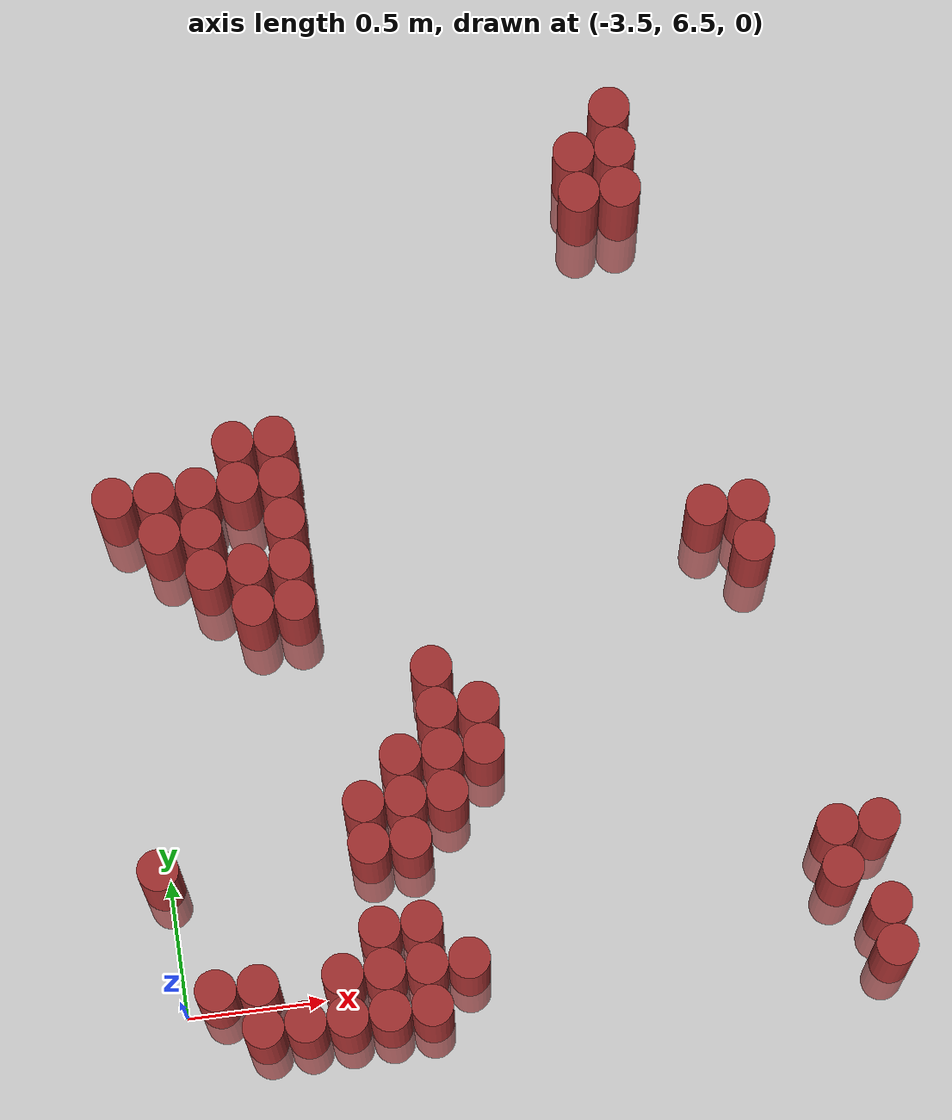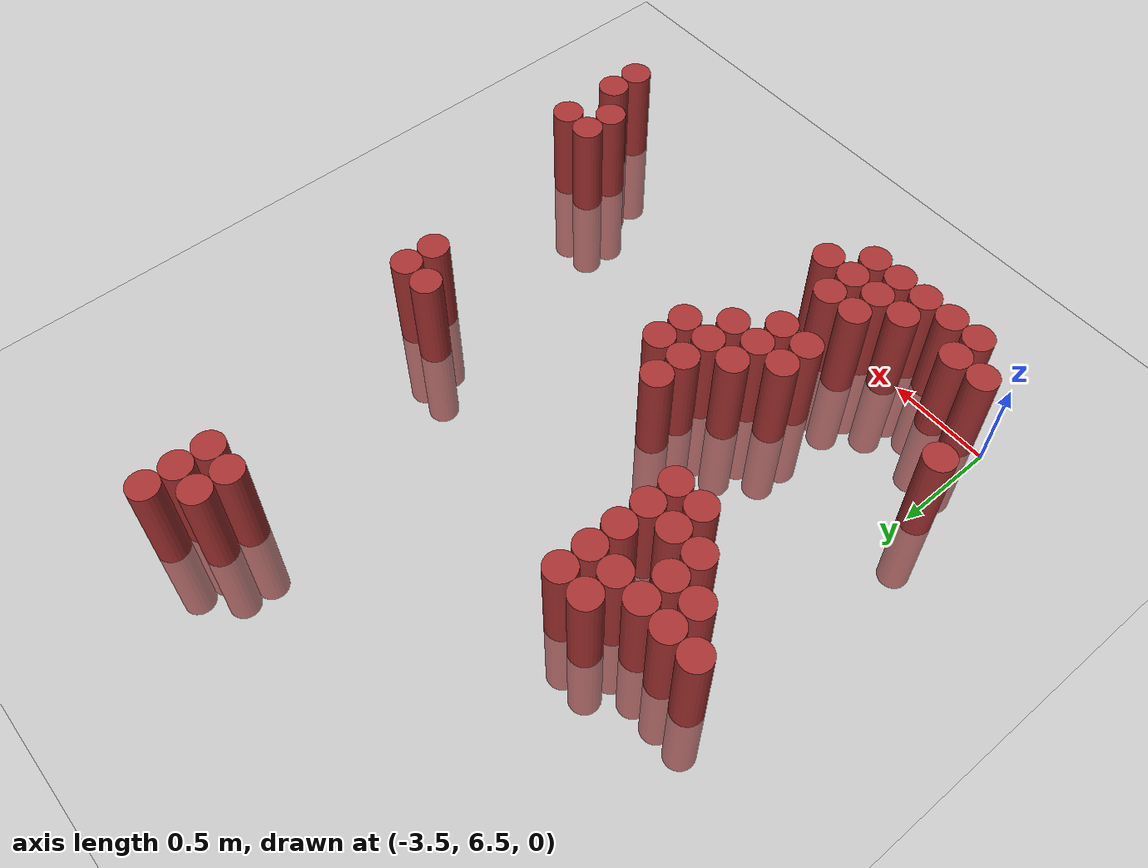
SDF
<sdf version="1.6">
 <world name="default">
  <model name="ground_plane">
   <static>1</static>
   <link name="link">
    <collision name="collision">
     <geometry><plane><normal>0 0 1</normal><size>100 100</size></plane></geometry>
     <surface><friction><ode><mu>100</mu><mu2>50</mu2></ode></friction></surface>
    </collision>
    <visual name="visual">
     <cast_shadows>0</cast_shadows>
     <geometry><plane><normal>0 0 1</normal><size>100 100</size></plane></geometry>
     <material>
      <script><uri>file://media/materials/scripts/gazebo.material</uri><name>Gazebo/Grey</name></script>
     </material>
    </visual>
   </link>
  </model>
  <model name="unit_cylinder_169">
   <static>1</static>
   <pose>-3.525000 6.975000 0.000000 0.000000 0.000000 0.000000</pose>
   <link name="link">
    <inertial>
     <mass>1</mass>
     <inertia><ixx>0.145833</ixx><ixy>0</ixy><ixz>0</ixz><iyy>0.145833</iyy><iyz>0</iyz><izz>0.125</izz></inertia>
    </inertial>
    <collision name="collision">
     <geometry><cylinder><radius>0.075000</radius><length>1</length></cylinder></geometry>
    </collision>
    <visual name="visual">
     <geometry><cylinder><radius>0.075000</radius><length>1</length></cylinder></geometry>
     <material>
      <ambient>0.648000 0.192000 0.192000 1</ambient>
      <diffuse>0.648000 0.192000 0.192000 1</diffuse>
     </material>
     <material>
      <script><name>Gazebo/Grey</name><uri>file://media/materials/scripts/gazebo.material</uri></script>
     </material>
    </visual>
   </link>
  </model>
  <model name="unit_cylinder_170">
   <static>1</static>
   <pose>-3.525000 8.325000 0.000000 0.000000 0.000000 0.000000</pose>
   <link name="link">
    <inertial>
     <mass>1</mass>
     <inertia><ixx>0.145833</ixx><ixy>0</ixy><ixz>0</ixz><iyy>0.145833</iyy><iyz>0</iyz><izz>0.125</izz></inertia>
    </inertial>
    <collision name="collision">
     <geometry><cylinder><radius>0.075000</radius><length>1</length></cylinder></geometry>
    </collision>
    <visual name="visual">
     <geometry><cylinder><radius>0.075000</radius><length>1</length></cylinder></geometry>
     <material>
      <ambient>0.648000 0.192000 0.192000 1</ambient>
      <diffuse>0.648000 0.192000 0.192000 1</diffuse>
     </material>
     <material>
      <script><name>Gazebo/Grey</name><uri>file://media/materials/scripts/gazebo.material</uri></script>
     </material>
    </visual>
   </link>
  </model>
  <model name="unit_cylinder_171">
   <static>1</static>
   <pose>-3.375000 6.525000 0.000000 0.000000 0.000000 0.000000</pose>
   <link name="link">
    <inertial>
     <mass>1</mass>
     <inertia><ixx>0.145833</ixx><ixy>0</ixy><ixz>0</ixz><iyy>0.145833</iyy><iyz>0</iyz><izz>0.125</izz></inertia>
    </inertial>
    <collision name="collision">
     <geometry><cylinder><radius>0.075000</radius><length>1</length></cylinder></geometry>
    </collision>
    <visual name="visual">
     <geometry><cylinder><radius>0.075000</radius><length>1</length></cylinder></geometry>
     <material>
      <ambient>0.648000 0.192000 0.192000 1</ambient>
      <diffuse>0.648000 0.192000 0.192000 1</diffuse>
     </material>
     <material>
      <script><name>Gazebo/Grey</name><uri>file://media/materials/scripts/gazebo.material</uri></script>
     </material>
    </visual>
   </link>
  </model>
  <model name="unit_cylinder_172">
   <static>1</static>
   <pose>-3.375000 8.175000 0.000000 0.000000 0.000000 0.000000</pose>
   <link name="link">
    <inertial>
     <mass>1</mass>
     <inertia><ixx>0.145833</ixx><ixy>0</ixy><ixz>0</ixz><iyy>0.145833</iyy><iyz>0</iyz><izz>0.125</izz></inertia>
    </inertial>
    <collision name="collision">
     <geometry><cylinder><radius>0.075000</radius><length>1</length></cylinder></geometry>
    </collision>
    <visual name="visual">
     <geometry><cylinder><radius>0.075000</radius><length>1</length></cylinder></geometry>
     <material>
      <ambient>0.648000 0.192000 0.192000 1</ambient>
      <diffuse>0.648000 0.192000 0.192000 1</diffuse>
     </material>
     <material>
      <script><name>Gazebo/Grey</name><uri>file://media/materials/scripts/gazebo.material</uri></script>
     </material>
    </visual>
   </link>
  </model>
  <model name="unit_cylinder_173">
   <static>1</static>
   <pose>-3.375000 8.325000 0.000000 0.000000 0.000000 0.000000</pose>
   <link name="link">
    <inertial>
     <mass>1</mass>
     <inertia><ixx>0.145833</ixx><ixy>0</ixy><ixz>0</ixz><iyy>0.145833</iyy><iyz>0</iyz><izz>0.125</izz></inertia>
    </inertial>
    <collision name="collision">
     <geometry><cylinder><radius>0.075000</radius><length>1</length></cylinder></geometry>
    </collision>
    <visual name="visual">
     <geometry><cylinder><radius>0.075000</radius><length>1</length></cylinder></geometry>
     <material>
      <ambient>0.648000 0.192000 0.192000 1</ambient>
      <diffuse>0.648000 0.192000 0.192000 1</diffuse>
     </material>
     <material>
      <script><name>Gazebo/Grey</name><uri>file://media/materials/scripts/gazebo.material</uri></script>
     </material>
    </visual>
   </link>
  </model>
  <model name="unit_cylinder_174">
   <static>1</static>
   <pose>-3.225000 6.375000 0.000000 0.000000 0.000000 0.000000</pose>
   <link name="link">
    <inertial>
     <mass>1</mass>
     <inertia><ixx>0.145833</ixx><ixy>0</ixy><ixz>0</ixz><iyy>0.145833</iyy><iyz>0</iyz><izz>0.125</izz></inertia>
    </inertial>
    <collision name="collision">
     <geometry><cylinder><radius>0.075000</radius><length>1</length></cylinder></geometry>
    </collision>
    <visual name="visual">
     <geometry><cylinder><radius>0.075000</radius><length>1</length></cylinder></geometry>
     <material>
      <ambient>0.648000 0.192000 0.192000 1</ambient>
      <diffuse>0.648000 0.192000 0.192000 1</diffuse>
     </material>
     <material>
      <script><name>Gazebo/Grey</name><uri>file://media/materials/scripts/gazebo.material</uri></script>
     </material>
    </visual>
   </link>
  </model>
  <model name="unit_cylinder_175">
   <static>1</static>
   <pose>-3.225000 6.525000 0.000000 0.000000 0.000000 0.000000</pose>
   <link name="link">
    <inertial>
     <mass>1</mass>
     <inertia><ixx>0.145833</ixx><ixy>0</ixy><ixz>0</ixz><iyy>0.145833</iyy><iyz>0</iyz><izz>0.125</izz></inertia>
    </inertial>
    <collision name="collision">
     <geometry><cylinder><radius>0.075000</radius><length>1</length></cylinder></geometry>
    </collision>
    <visual name="visual">
     <geometry><cylinder><radius>0.075000</radius><length>1</length></cylinder></geometry>
     <material>
      <ambient>0.648000 0.192000 0.192000 1</ambient>
      <diffuse>0.648000 0.192000 0.192000 1</diffuse>
     </material>
     <material>
      <script><name>Gazebo/Grey</name><uri>file://media/materials/scripts/gazebo.material</uri></script>
     </material>
    </visual>
   </link>
  </model>
  <model name="unit_cylinder_176">
   <static>1</static>
   <pose>-3.225000 8.025000 0.000000 0.000000 0.000000 0.000000</pose>
   <link name="link">
    <inertial>
     <mass>1</mass>
     <inertia><ixx>0.145833</ixx><ixy>0</ixy><ixz>0</ixz><iyy>0.145833</iyy><iyz>0</iyz><izz>0.125</izz></inertia>
    </inertial>
    <collision name="collision">
     <geometry><cylinder><radius>0.075000</radius><length>1</length></cylinder></geometry>
    </collision>
    <visual name="visual">
     <geometry><cylinder><radius>0.075000</radius><length>1</length></cylinder></geometry>
     <material>
      <ambient>0.648000 0.192000 0.192000 1</ambient>
      <diffuse>0.648000 0.192000 0.192000 1</diffuse>
     </material>
     <material>
      <script><name>Gazebo/Grey</name><uri>file://media/materials/scripts/gazebo.material</uri></script>
     </material>
    </visual>
   </link>
  </model>
  <model name="unit_cylinder_177">
   <static>1</static>
   <pose>-3.225000 8.175000 0.000000 0.000000 0.000000 0.000000</pose>
   <link name="link">
    <inertial>
     <mass>1</mass>
     <inertia><ixx>0.145833</ixx><ixy>0</ixy><ixz>0</ixz><iyy>0.145833</iyy><iyz>0</iyz><izz>0.125</izz></inertia>
    </inertial>
    <collision name="collision">
     <geometry><cylinder><radius>0.075000</radius><length>1</length></cylinder></geometry>
    </collision>
    <visual name="visual">
     <geometry><cylinder><radius>0.075000</radius><length>1</length></cylinder></geometry>
     <material>
      <ambient>0.648000 0.192000 0.192000 1</ambient>
      <diffuse>0.648000 0.192000 0.192000 1</diffuse>
     </material>
     <material>
      <script><name>Gazebo/Grey</name><uri>file://media/materials/scripts/gazebo.material</uri></script>
     </material>
    </visual>
   </link>
  </model>
  <model name="unit_cylinder_178">
   <static>1</static>
   <pose>-3.225000 8.325000 0.000000 0.000000 0.000000 0.000000</pose>
   <link name="link">
    <inertial>
     <mass>1</mass>
     <inertia><ixx>0.145833</ixx><ixy>0</ixy><ixz>0</ixz><iyy>0.145833</iyy><iyz>0</iyz><izz>0.125</izz></inertia>
    </inertial>
    <collision name="collision">
     <geometry><cylinder><radius>0.075000</radius><length>1</length></cylinder></geometry>
    </collision>
    <visual name="visual">
     <geometry><cylinder><radius>0.075000</radius><length>1</length></cylinder></geometry>
     <material>
      <ambient>0.648000 0.192000 0.192000 1</ambient>
      <diffuse>0.648000 0.192000 0.192000 1</diffuse>
     </material>
     <material>
      <script><name>Gazebo/Grey</name><uri>file://media/materials/scripts/gazebo.material</uri></script>
     </material>
    </visual>
   </link>
  </model>
  <model name="unit_cylinder_182">
   <static>1</static>
   <pose>-3.075000 6.375000 0.000000 0.000000 0.000000 0.000000</pose>
   <link name="link">
    <inertial>
     <mass>1</mass>
     <inertia><ixx>0.145833</ixx><ixy>0</ixy><ixz>0</ixz><iyy>0.145833</iyy><iyz>0</iyz><izz>0.125</izz></inertia>
    </inertial>
    <collision name="collision">
     <geometry><cylinder><radius>0.075000</radius><length>1</length></cylinder></geometry>
    </collision>
    <visual name="visual">
     <geometry><cylinder><radius>0.075000</radius><length>1</length></cylinder></geometry>
     <material>
      <ambient>0.648000 0.192000 0.192000 1</ambient>
      <diffuse>0.648000 0.192000 0.192000 1</diffuse>
     </material>
     <material>
      <script><name>Gazebo/Grey</name><uri>file://media/materials/scripts/gazebo.material</uri></script>
     </material>
    </visual>
   </link>
  </model>
  <model name="unit_cylinder_183">
   <static>1</static>
   <pose>-3.075000 7.875000 0.000000 0.000000 0.000000 0.000000</pose>
   <link name="link">
    <inertial>
     <mass>1</mass>
     <inertia><ixx>0.145833</ixx><ixy>0</ixy><ixz>0</ixz><iyy>0.145833</iyy><iyz>0</iyz><izz>0.125</izz></inertia>
    </inertial>
    <collision name="collision">
     <geometry><cylinder><radius>0.075000</radius><length>1</length></cylinder></geometry>
    </collision>
    <visual name="visual">
     <geometry><cylinder><radius>0.075000</radius><length>1</length></cylinder></geometry>
     <material>
      <ambient>0.648000 0.192000 0.192000 1</ambient>
      <diffuse>0.648000 0.192000 0.192000 1</diffuse>
     </material>
     <material>
      <script><name>Gazebo/Grey</name><uri>file://media/materials/scripts/gazebo.material</uri></script>
     </material>
    </visual>
   </link>
  </model>
  <model name="unit_cylinder_184">
   <static>1</static>
   <pose>-3.075000 8.025000 0.000000 0.000000 0.000000 0.000000</pose>
   <link name="link">
    <inertial>
     <mass>1</mass>
     <inertia><ixx>0.145833</ixx><ixy>0</ixy><ixz>0</ixz><iyy>0.145833</iyy><iyz>0</iyz><izz>0.125</izz></inertia>
    </inertial>
    <collision name="collision">
     <geometry><cylinder><radius>0.075000</radius><length>1</length></cylinder></geometry>
    </collision>
    <visual name="visual">
     <geometry><cylinder><radius>0.075000</radius><length>1</length></cylinder></geometry>
     <material>
      <ambient>0.648000 0.192000 0.192000 1</ambient>
      <diffuse>0.648000 0.192000 0.192000 1</diffuse>
     </material>
     <material>
      <script><name>Gazebo/Grey</name><uri>file://media/materials/scripts/gazebo.material</uri></script>
     </material>
    </visual>
   </link>
  </model>
  <model name="unit_cylinder_185">
   <static>1</static>
   <pose>-3.075000 8.325000 0.000000 0.000000 0.000000 0.000000</pose>
   <link name="link">
    <inertial>
     <mass>1</mass>
     <inertia><ixx>0.145833</ixx><ixy>0</ixy><ixz>0</ixz><iyy>0.145833</iyy><iyz>0</iyz><izz>0.125</izz></inertia>
    </inertial>
    <collision name="collision">
     <geometry><cylinder><radius>0.075000</radius><length>1</length></cylinder></geometry>
    </collision>
    <visual name="visual">
     <geometry><cylinder><radius>0.075000</radius><length>1</length></cylinder></geometry>
     <material>
      <ambient>0.648000 0.192000 0.192000 1</ambient>
      <diffuse>0.648000 0.192000 0.192000 1</diffuse>
     </material>
     <material>
      <script><name>Gazebo/Grey</name><uri>file://media/materials/scripts/gazebo.material</uri></script>
     </material>
    </visual>
   </link>
  </model>
  <model name="unit_cylinder_186">
   <static>1</static>
   <pose>-3.075000 8.475000 0.000000 0.000000 0.000000 0.000000</pose>
   <link name="link">
    <inertial>
     <mass>1</mass>
     <inertia><ixx>0.145833</ixx><ixy>0</ixy><ixz>0</ixz><iyy>0.145833</iyy><iyz>0</iyz><izz>0.125</izz></inertia>
    </inertial>
    <collision name="collision">
     <geometry><cylinder><radius>0.075000</radius><length>1</length></cylinder></geometry>
    </collision>
    <visual name="visual">
     <geometry><cylinder><radius>0.075000</radius><length>1</length></cylinder></geometry>
     <material>
      <ambient>0.648000 0.192000 0.192000 1</ambient>
      <diffuse>0.648000 0.192000 0.192000 1</diffuse>
     </material>
     <material>
      <script><name>Gazebo/Grey</name><uri>file://media/materials/scripts/gazebo.material</uri></script>
     </material>
    </visual>
   </link>
  </model>
  <model name="unit_cylinder_191">
   <static>1</static>
   <pose>-2.925000 6.375000 0.000000 0.000000 0.000000 0.000000</pose>
   <link name="link">
    <inertial>
     <mass>1</mass>
     <inertia><ixx>0.145833</ixx><ixy>0</ixy><ixz>0</ixz><iyy>0.145833</iyy><iyz>0</iyz><izz>0.125</izz></inertia>
    </inertial>
    <collision name="collision">
     <geometry><cylinder><radius>0.075000</radius><length>1</length></cylinder></geometry>
    </collision>
    <visual name="visual">
     <geometry><cylinder><radius>0.075000</radius><length>1</length></cylinder></geometry>
     <material>
      <ambient>0.648000 0.192000 0.192000 1</ambient>
      <diffuse>0.648000 0.192000 0.192000 1</diffuse>
     </material>
     <material>
      <script><name>Gazebo/Grey</name><uri>file://media/materials/scripts/gazebo.material</uri></script>
     </material>
    </visual>
   </link>
  </model>
  <model name="unit_cylinder_192">
   <static>1</static>
   <pose>-2.925000 6.525000 0.000000 0.000000 0.000000 0.000000</pose>
   <link name="link">
    <inertial>
     <mass>1</mass>
     <inertia><ixx>0.145833</ixx><ixy>0</ixy><ixz>0</ixz><iyy>0.145833</iyy><iyz>0</iyz><izz>0.125</izz></inertia>
    </inertial>
    <collision name="collision">
     <geometry><cylinder><radius>0.075000</radius><length>1</length></cylinder></geometry>
    </collision>
    <visual name="visual">
     <geometry><cylinder><radius>0.075000</radius><length>1</length></cylinder></geometry>
     <material>
      <ambient>0.648000 0.192000 0.192000 1</ambient>
      <diffuse>0.648000 0.192000 0.192000 1</diffuse>
     </material>
     <material>
      <script><name>Gazebo/Grey</name><uri>file://media/materials/scripts/gazebo.material</uri></script>
     </material>
    </visual>
   </link>
  </model>
  <model name="unit_cylinder_193">
   <static>1</static>
   <pose>-2.925000 7.875000 0.000000 0.000000 0.000000 0.000000</pose>
   <link name="link">
    <inertial>
     <mass>1</mass>
     <inertia><ixx>0.145833</ixx><ixy>0</ixy><ixz>0</ixz><iyy>0.145833</iyy><iyz>0</iyz><izz>0.125</izz></inertia>
    </inertial>
    <collision name="collision">
     <geometry><cylinder><radius>0.075000</radius><length>1</length></cylinder></geometry>
    </collision>
    <visual name="visual">
     <geometry><cylinder><radius>0.075000</radius><length>1</length></cylinder></geometry>
     <material>
      <ambient>0.648000 0.192000 0.192000 1</ambient>
      <diffuse>0.648000 0.192000 0.192000 1</diffuse>
     </material>
     <material>
      <script><name>Gazebo/Grey</name><uri>file://media/materials/scripts/gazebo.material</uri></script>
     </material>
    </visual>
   </link>
  </model>
  <model name="unit_cylinder_194">
   <static>1</static>
   <pose>-2.925000 8.025000 0.000000 0.000000 0.000000 0.000000</pose>
   <link name="link">
    <inertial>
     <mass>1</mass>
     <inertia><ixx>0.145833</ixx><ixy>0</ixy><ixz>0</ixz><iyy>0.145833</iyy><iyz>0</iyz><izz>0.125</izz></inertia>
    </inertial>
    <collision name="collision">
     <geometry><cylinder><radius>0.075000</radius><length>1</length></cylinder></geometry>
    </collision>
    <visual name="visual">
     <geometry><cylinder><radius>0.075000</radius><length>1</length></cylinder></geometry>
     <material>
      <ambient>0.648000 0.192000 0.192000 1</ambient>
      <diffuse>0.648000 0.192000 0.192000 1</diffuse>
     </material>
     <material>
      <script><name>Gazebo/Grey</name><uri>file://media/materials/scripts/gazebo.material</uri></script>
     </material>
    </visual>
   </link>
  </model>
  <model name="unit_cylinder_195">
   <static>1</static>
   <pose>-2.925000 8.175000 0.000000 0.000000 0.000000 0.000000</pose>
   <link name="link">
    <inertial>
     <mass>1</mass>
     <inertia><ixx>0.145833</ixx><ixy>0</ixy><ixz>0</ixz><iyy>0.145833</iyy><iyz>0</iyz><izz>0.125</izz></inertia>
    </inertial>
    <collision name="collision">
     <geometry><cylinder><radius>0.075000</radius><length>1</length></cylinder></geometry>
    </collision>
    <visual name="visual">
     <geometry><cylinder><radius>0.075000</radius><length>1</length></cylinder></geometry>
     <material>
      <ambient>0.648000 0.192000 0.192000 1</ambient>
      <diffuse>0.648000 0.192000 0.192000 1</diffuse>
     </material>
     <material>
      <script><name>Gazebo/Grey</name><uri>file://media/materials/scripts/gazebo.material</uri></script>
     </material>
    </visual>
   </link>
  </model>
  <model name="unit_cylinder_196">
   <static>1</static>
   <pose>-2.925000 8.325000 0.000000 0.000000 0.000000 0.000000</pose>
   <link name="link">
    <inertial>
     <mass>1</mass>
     <inertia><ixx>0.145833</ixx><ixy>0</ixy><ixz>0</ixz><iyy>0.145833</iyy><iyz>0</iyz><izz>0.125</izz></inertia>
    </inertial>
    <collision name="collision">
     <geometry><cylinder><radius>0.075000</radius><length>1</length></cylinder></geometry>
    </collision>
    <visual name="visual">
     <geometry><cylinder><radius>0.075000</radius><length>1</length></cylinder></geometry>
     <material>
      <ambient>0.648000 0.192000 0.192000 1</ambient>
      <diffuse>0.648000 0.192000 0.192000 1</diffuse>
     </material>
     <material>
      <script><name>Gazebo/Grey</name><uri>file://media/materials/scripts/gazebo.material</uri></script>
     </material>
    </visual>
   </link>
  </model>
  <model name="unit_cylinder_197">
   <static>1</static>
   <pose>-2.925000 8.475000 0.000000 0.000000 0.000000 0.000000</pose>
   <link name="link">
    <inertial>
     <mass>1</mass>
     <inertia><ixx>0.145833</ixx><ixy>0</ixy><ixz>0</ixz><iyy>0.145833</iyy><iyz>0</iyz><izz>0.125</izz></inertia>
    </inertial>
    <collision name="collision">
     <geometry><cylinder><radius>0.075000</radius><length>1</length></cylinder></geometry>
    </collision>
    <visual name="visual">
     <geometry><cylinder><radius>0.075000</radius><length>1</length></cylinder></geometry>
     <material>
      <ambient>0.648000 0.192000 0.192000 1</ambient>
      <diffuse>0.648000 0.192000 0.192000 1</diffuse>
     </material>
     <material>
      <script><name>Gazebo/Grey</name><uri>file://media/materials/scripts/gazebo.material</uri></script>
     </material>
    </visual>
   </link>
  </model>
  <model name="unit_cylinder_201">
   <static>1</static>
   <pose>-2.775000 6.375000 0.000000 0.000000 0.000000 0.000000</pose>
   <link name="link">
    <inertial>
     <mass>1</mass>
     <inertia><ixx>0.145833</ixx><ixy>0</ixy><ixz>0</ixz><iyy>0.145833</iyy><iyz>0</iyz><izz>0.125</izz></inertia>
    </inertial>
    <collision name="collision">
     <geometry><cylinder><radius>0.075000</radius><length>1</length></cylinder></geometry>
    </collision>
    <visual name="visual">
     <geometry><cylinder><radius>0.075000</radius><length>1</length></cylinder></geometry>
     <material>
      <ambient>0.648000 0.192000 0.192000 1</ambient>
      <diffuse>0.648000 0.192000 0.192000 1</diffuse>
     </material>
     <material>
      <script><name>Gazebo/Grey</name><uri>file://media/materials/scripts/gazebo.material</uri></script>
     </material>
    </visual>
   </link>
  </model>
  <model name="unit_cylinder_202">
   <static>1</static>
   <pose>-2.775000 6.525000 0.000000 0.000000 0.000000 0.000000</pose>
   <link name="link">
    <inertial>
     <mass>1</mass>
     <inertia><ixx>0.145833</ixx><ixy>0</ixy><ixz>0</ixz><iyy>0.145833</iyy><iyz>0</iyz><izz>0.125</izz></inertia>
    </inertial>
    <collision name="collision">
     <geometry><cylinder><radius>0.075000</radius><length>1</length></cylinder></geometry>
    </collision>
    <visual name="visual">
     <geometry><cylinder><radius>0.075000</radius><length>1</length></cylinder></geometry>
     <material>
      <ambient>0.648000 0.192000 0.192000 1</ambient>
      <diffuse>0.648000 0.192000 0.192000 1</diffuse>
     </material>
     <material>
      <script><name>Gazebo/Grey</name><uri>file://media/materials/scripts/gazebo.material</uri></script>
     </material>
    </visual>
   </link>
  </model>
  <model name="unit_cylinder_203">
   <static>1</static>
   <pose>-2.775000 6.675000 0.000000 0.000000 0.000000 0.000000</pose>
   <link name="link">
    <inertial>
     <mass>1</mass>
     <inertia><ixx>0.145833</ixx><ixy>0</ixy><ixz>0</ixz><iyy>0.145833</iyy><iyz>0</iyz><izz>0.125</izz></inertia>
    </inertial>
    <collision name="collision">
     <geometry><cylinder><radius>0.075000</radius><length>1</length></cylinder></geometry>
    </collision>
    <visual name="visual">
     <geometry><cylinder><radius>0.075000</radius><length>1</length></cylinder></geometry>
     <material>
      <ambient>0.648000 0.192000 0.192000 1</ambient>
      <diffuse>0.648000 0.192000 0.192000 1</diffuse>
     </material>
     <material>
      <script><name>Gazebo/Grey</name><uri>file://media/materials/scripts/gazebo.material</uri></script>
     </material>
    </visual>
   </link>
  </model>
  <model name="unit_cylinder_204">
   <static>1</static>
   <pose>-2.775000 6.975000 0.000000 0.000000 0.000000 0.000000</pose>
   <link name="link">
    <inertial>
     <mass>1</mass>
     <inertia><ixx>0.145833</ixx><ixy>0</ixy><ixz>0</ixz><iyy>0.145833</iyy><iyz>0</iyz><izz>0.125</izz></inertia>
    </inertial>
    <collision name="collision">
     <geometry><cylinder><radius>0.075000</radius><length>1</length></cylinder></geometry>
    </collision>
    <visual name="visual">
     <geometry><cylinder><radius>0.075000</radius><length>1</length></cylinder></geometry>
     <material>
      <ambient>0.648000 0.192000 0.192000 1</ambient>
      <diffuse>0.648000 0.192000 0.192000 1</diffuse>
     </material>
     <material>
      <script><name>Gazebo/Grey</name><uri>file://media/materials/scripts/gazebo.material</uri></script>
     </material>
    </visual>
   </link>
  </model>
  <model name="unit_cylinder_205">
   <static>1</static>
   <pose>-2.775000 7.125000 0.000000 0.000000 0.000000 0.000000</pose>
   <link name="link">
    <inertial>
     <mass>1</mass>
     <inertia><ixx>0.145833</ixx><ixy>0</ixy><ixz>0</ixz><iyy>0.145833</iyy><iyz>0</iyz><izz>0.125</izz></inertia>
    </inertial>
    <collision name="collision">
     <geometry><cylinder><radius>0.075000</radius><length>1</length></cylinder></geometry>
    </collision>
    <visual name="visual">
     <geometry><cylinder><radius>0.075000</radius><length>1</length></cylinder></geometry>
     <material>
      <ambient>0.648000 0.192000 0.192000 1</ambient>
      <diffuse>0.648000 0.192000 0.192000 1</diffuse>
     </material>
     <material>
      <script><name>Gazebo/Grey</name><uri>file://media/materials/scripts/gazebo.material</uri></script>
     </material>
    </visual>
   </link>
  </model>
  <model name="unit_cylinder_209">
   <static>1</static>
   <pose>-2.625000 6.375000 0.000000 0.000000 0.000000 0.000000</pose>
   <link name="link">
    <inertial>
     <mass>1</mass>
     <inertia><ixx>0.145833</ixx><ixy>0</ixy><ixz>0</ixz><iyy>0.145833</iyy><iyz>0</iyz><izz>0.125</izz></inertia>
    </inertial>
    <collision name="collision">
     <geometry><cylinder><radius>0.075000</radius><length>1</length></cylinder></geometry>
    </collision>
    <visual name="visual">
     <geometry><cylinder><radius>0.075000</radius><length>1</length></cylinder></geometry>
     <material>
      <ambient>0.648000 0.192000 0.192000 1</ambient>
      <diffuse>0.648000 0.192000 0.192000 1</diffuse>
     </material>
     <material>
      <script><name>Gazebo/Grey</name><uri>file://media/materials/scripts/gazebo.material</uri></script>
     </material>
    </visual>
   </link>
  </model>
  <model name="unit_cylinder_210">
   <static>1</static>
   <pose>-2.625000 6.525000 0.000000 0.000000 0.000000 0.000000</pose>
   <link name="link">
    <inertial>
     <mass>1</mass>
     <inertia><ixx>0.145833</ixx><ixy>0</ixy><ixz>0</ixz><iyy>0.145833</iyy><iyz>0</iyz><izz>0.125</izz></inertia>
    </inertial>
    <collision name="collision">
     <geometry><cylinder><radius>0.075000</radius><length>1</length></cylinder></geometry>
    </collision>
    <visual name="visual">
     <geometry><cylinder><radius>0.075000</radius><length>1</length></cylinder></geometry>
     <material>
      <ambient>0.648000 0.192000 0.192000 1</ambient>
      <diffuse>0.648000 0.192000 0.192000 1</diffuse>
     </material>
     <material>
      <script><name>Gazebo/Grey</name><uri>file://media/materials/scripts/gazebo.material</uri></script>
     </material>
    </visual>
   </link>
  </model>
  <model name="unit_cylinder_211">
   <static>1</static>
   <pose>-2.625000 6.675000 0.000000 0.000000 0.000000 0.000000</pose>
   <link name="link">
    <inertial>
     <mass>1</mass>
     <inertia><ixx>0.145833</ixx><ixy>0</ixy><ixz>0</ixz><iyy>0.145833</iyy><iyz>0</iyz><izz>0.125</izz></inertia>
    </inertial>
    <collision name="collision">
     <geometry><cylinder><radius>0.075000</radius><length>1</length></cylinder></geometry>
    </collision>
    <visual name="visual">
     <geometry><cylinder><radius>0.075000</radius><length>1</length></cylinder></geometry>
     <material>
      <ambient>0.648000 0.192000 0.192000 1</ambient>
      <diffuse>0.648000 0.192000 0.192000 1</diffuse>
     </material>
     <material>
      <script><name>Gazebo/Grey</name><uri>file://media/materials/scripts/gazebo.material</uri></script>
     </material>
    </visual>
   </link>
  </model>
  <model name="unit_cylinder_212">
   <static>1</static>
   <pose>-2.625000 6.975000 0.000000 0.000000 0.000000 0.000000</pose>
   <link name="link">
    <inertial>
     <mass>1</mass>
     <inertia><ixx>0.145833</ixx><ixy>0</ixy><ixz>0</ixz><iyy>0.145833</iyy><iyz>0</iyz><izz>0.125</izz></inertia>
    </inertial>
    <collision name="collision">
     <geometry><cylinder><radius>0.075000</radius><length>1</length></cylinder></geometry>
    </collision>
    <visual name="visual">
     <geometry><cylinder><radius>0.075000</radius><length>1</length></cylinder></geometry>
     <material>
      <ambient>0.648000 0.192000 0.192000 1</ambient>
      <diffuse>0.648000 0.192000 0.192000 1</diffuse>
     </material>
     <material>
      <script><name>Gazebo/Grey</name><uri>file://media/materials/scripts/gazebo.material</uri></script>
     </material>
    </visual>
   </link>
  </model>
  <model name="unit_cylinder_213">
   <static>1</static>
   <pose>-2.625000 7.125000 0.000000 0.000000 0.000000 0.000000</pose>
   <link name="link">
    <inertial>
     <mass>1</mass>
     <inertia><ixx>0.145833</ixx><ixy>0</ixy><ixz>0</ixz><iyy>0.145833</iyy><iyz>0</iyz><izz>0.125</izz></inertia>
    </inertial>
    <collision name="collision">
     <geometry><cylinder><radius>0.075000</radius><length>1</length></cylinder></geometry>
    </collision>
    <visual name="visual">
     <geometry><cylinder><radius>0.075000</radius><length>1</length></cylinder></geometry>
     <material>
      <ambient>0.648000 0.192000 0.192000 1</ambient>
      <diffuse>0.648000 0.192000 0.192000 1</diffuse>
     </material>
     <material>
      <script><name>Gazebo/Grey</name><uri>file://media/materials/scripts/gazebo.material</uri></script>
     </material>
    </visual>
   </link>
  </model>
  <model name="unit_cylinder_214">
   <static>1</static>
   <pose>-2.625000 7.275000 0.000000 0.000000 0.000000 0.000000</pose>
   <link name="link">
    <inertial>
     <mass>1</mass>
     <inertia><ixx>0.145833</ixx><ixy>0</ixy><ixz>0</ixz><iyy>0.145833</iyy><iyz>0</iyz><izz>0.125</izz></inertia>
    </inertial>
    <collision name="collision">
     <geometry><cylinder><radius>0.075000</radius><length>1</length></cylinder></geometry>
    </collision>
    <visual name="visual">
     <geometry><cylinder><radius>0.075000</radius><length>1</length></cylinder></geometry>
     <material>
      <ambient>0.648000 0.192000 0.192000 1</ambient>
      <diffuse>0.648000 0.192000 0.192000 1</diffuse>
     </material>
     <material>
      <script><name>Gazebo/Grey</name><uri>file://media/materials/scripts/gazebo.material</uri></script>
     </material>
    </visual>
   </link>
  </model>
  <model name="unit_cylinder_218">
   <static>1</static>
   <pose>-2.475000 6.525000 0.000000 0.000000 0.000000 0.000000</pose>
   <link name="link">
    <inertial>
     <mass>1</mass>
     <inertia><ixx>0.145833</ixx><ixy>0</ixy><ixz>0</ixz><iyy>0.145833</iyy><iyz>0</iyz><izz>0.125</izz></inertia>
    </inertial>
    <collision name="collision">
     <geometry><cylinder><radius>0.075000</radius><length>1</length></cylinder></geometry>
    </collision>
    <visual name="visual">
     <geometry><cylinder><radius>0.075000</radius><length>1</length></cylinder></geometry>
     <material>
      <ambient>0.648000 0.192000 0.192000 1</ambient>
      <diffuse>0.648000 0.192000 0.192000 1</diffuse>
     </material>
     <material>
      <script><name>Gazebo/Grey</name><uri>file://media/materials/scripts/gazebo.material</uri></script>
     </material>
    </visual>
   </link>
  </model>
  <model name="unit_cylinder_219">
   <static>1</static>
   <pose>-2.475000 7.125000 0.000000 0.000000 0.000000 0.000000</pose>
   <link name="link">
    <inertial>
     <mass>1</mass>
     <inertia><ixx>0.145833</ixx><ixy>0</ixy><ixz>0</ixz><iyy>0.145833</iyy><iyz>0</iyz><izz>0.125</izz></inertia>
    </inertial>
    <collision name="collision">
     <geometry><cylinder><radius>0.075000</radius><length>1</length></cylinder></geometry>
    </collision>
    <visual name="visual">
     <geometry><cylinder><radius>0.075000</radius><length>1</length></cylinder></geometry>
     <material>
      <ambient>0.648000 0.192000 0.192000 1</ambient>
      <diffuse>0.648000 0.192000 0.192000 1</diffuse>
     </material>
     <material>
      <script><name>Gazebo/Grey</name><uri>file://media/materials/scripts/gazebo.material</uri></script>
     </material>
    </visual>
   </link>
  </model>
  <model name="unit_cylinder_220">
   <static>1</static>
   <pose>-2.475000 7.275000 0.000000 0.000000 0.000000 0.000000</pose>
   <link name="link">
    <inertial>
     <mass>1</mass>
     <inertia><ixx>0.145833</ixx><ixy>0</ixy><ixz>0</ixz><iyy>0.145833</iyy><iyz>0</iyz><izz>0.125</izz></inertia>
    </inertial>
    <collision name="collision">
     <geometry><cylinder><radius>0.075000</radius><length>1</length></cylinder></geometry>
    </collision>
    <visual name="visual">
     <geometry><cylinder><radius>0.075000</radius><length>1</length></cylinder></geometry>
     <material>
      <ambient>0.648000 0.192000 0.192000 1</ambient>
      <diffuse>0.648000 0.192000 0.192000 1</diffuse>
     </material>
     <material>
      <script><name>Gazebo/Grey</name><uri>file://media/materials/scripts/gazebo.material</uri></script>
     </material>
    </visual>
   </link>
  </model>
  <model name="unit_cylinder_221">
   <static>1</static>
   <pose>-2.475000 7.425000 0.000000 0.000000 0.000000 0.000000</pose>
   <link name="link">
    <inertial>
     <mass>1</mass>
     <inertia><ixx>0.145833</ixx><ixy>0</ixy><ixz>0</ixz><iyy>0.145833</iyy><iyz>0</iyz><izz>0.125</izz></inertia>
    </inertial>
    <collision name="collision">
     <geometry><cylinder><radius>0.075000</radius><length>1</length></cylinder></geometry>
    </collision>
    <visual name="visual">
     <geometry><cylinder><radius>0.075000</radius><length>1</length></cylinder></geometry>
     <material>
      <ambient>0.648000 0.192000 0.192000 1</ambient>
      <diffuse>0.648000 0.192000 0.192000 1</diffuse>
     </material>
     <material>
      <script><name>Gazebo/Grey</name><uri>file://media/materials/scripts/gazebo.material</uri></script>
     </material>
    </visual>
   </link>
  </model>
  <model name="unit_cylinder_222">
   <static>1</static>
   <pose>-2.475000 7.575000 0.000000 0.000000 0.000000 0.000000</pose>
   <link name="link">
    <inertial>
     <mass>1</mass>
     <inertia><ixx>0.145833</ixx><ixy>0</ixy><ixz>0</ixz><iyy>0.145833</iyy><iyz>0</iyz><izz>0.125</izz></inertia>
    </inertial>
    <collision name="collision">
     <geometry><cylinder><radius>0.075000</radius><length>1</length></cylinder></geometry>
    </collision>
    <visual name="visual">
     <geometry><cylinder><radius>0.075000</radius><length>1</length></cylinder></geometry>
     <material>
      <ambient>0.648000 0.192000 0.192000 1</ambient>
      <diffuse>0.648000 0.192000 0.192000 1</diffuse>
     </material>
     <material>
      <script><name>Gazebo/Grey</name><uri>file://media/materials/scripts/gazebo.material</uri></script>
     </material>
    </visual>
   </link>
  </model>
  <model name="unit_cylinder_224">
   <static>1</static>
   <pose>-2.325000 7.275000 0.000000 0.000000 0.000000 0.000000</pose>
   <link name="link">
    <inertial>
     <mass>1</mass>
     <inertia><ixx>0.145833</ixx><ixy>0</ixy><ixz>0</ixz><iyy>0.145833</iyy><iyz>0</iyz><izz>0.125</izz></inertia>
    </inertial>
    <collision name="collision">
     <geometry><cylinder><radius>0.075000</radius><length>1</length></cylinder></geometry>
    </collision>
    <visual name="visual">
     <geometry><cylinder><radius>0.075000</radius><length>1</length></cylinder></geometry>
     <material>
      <ambient>0.648000 0.192000 0.192000 1</ambient>
      <diffuse>0.648000 0.192000 0.192000 1</diffuse>
     </material>
     <material>
      <script><name>Gazebo/Grey</name><uri>file://media/materials/scripts/gazebo.material</uri></script>
     </material>
    </visual>
   </link>
  </model>
  <model name="unit_cylinder_225">
   <static>1</static>
   <pose>-2.325000 7.425000 0.000000 0.000000 0.000000 0.000000</pose>
   <link name="link">
    <inertial>
     <mass>1</mass>
     <inertia><ixx>0.145833</ixx><ixy>0</ixy><ixz>0</ixz><iyy>0.145833</iyy><iyz>0</iyz><izz>0.125</izz></inertia>
    </inertial>
    <collision name="collision">
     <geometry><cylinder><radius>0.075000</radius><length>1</length></cylinder></geometry>
    </collision>
    <visual name="visual">
     <geometry><cylinder><radius>0.075000</radius><length>1</length></cylinder></geometry>
     <material>
      <ambient>0.648000 0.192000 0.192000 1</ambient>
      <diffuse>0.648000 0.192000 0.192000 1</diffuse>
     </material>
     <material>
      <script><name>Gazebo/Grey</name><uri>file://media/materials/scripts/gazebo.material</uri></script>
     </material>
    </visual>
   </link>
  </model>
  <model name="unit_cylinder_226">
   <static>1</static>
   <pose>-1.725000 9.225000 0.000000 0.000000 0.000000 0.000000</pose>
   <link name="link">
    <inertial>
     <mass>1</mass>
     <inertia><ixx>0.145833</ixx><ixy>0</ixy><ixz>0</ixz><iyy>0.145833</iyy><iyz>0</iyz><izz>0.125</izz></inertia>
    </inertial>
    <collision name="collision">
     <geometry><cylinder><radius>0.075000</radius><length>1</length></cylinder></geometry>
    </collision>
    <visual name="visual">
     <geometry><cylinder><radius>0.075000</radius><length>1</length></cylinder></geometry>
     <material>
      <ambient>0.648000 0.192000 0.192000 1</ambient>
      <diffuse>0.648000 0.192000 0.192000 1</diffuse>
     </material>
     <material>
      <script><name>Gazebo/Grey</name><uri>file://media/materials/scripts/gazebo.material</uri></script>
     </material>
    </visual>
   </link>
  </model>
  <model name="unit_cylinder_227">
   <static>1</static>
   <pose>-1.725000 9.375000 0.000000 0.000000 0.000000 0.000000</pose>
   <link name="link">
    <inertial>
     <mass>1</mass>
     <inertia><ixx>0.145833</ixx><ixy>0</ixy><ixz>0</ixz><iyy>0.145833</iyy><iyz>0</iyz><izz>0.125</izz></inertia>
    </inertial>
    <collision name="collision">
     <geometry><cylinder><radius>0.075000</radius><length>1</length></cylinder></geometry>
    </collision>
    <visual name="visual">
     <geometry><cylinder><radius>0.075000</radius><length>1</length></cylinder></geometry>
     <material>
      <ambient>0.648000 0.192000 0.192000 1</ambient>
      <diffuse>0.648000 0.192000 0.192000 1</diffuse>
     </material>
     <material>
      <script><name>Gazebo/Grey</name><uri>file://media/materials/scripts/gazebo.material</uri></script>
     </material>
    </visual>
   </link>
  </model>
  <model name="unit_cylinder_228">
   <static>1</static>
   <pose>-1.575000 9.225000 0.000000 0.000000 0.000000 0.000000</pose>
   <link name="link">
    <inertial>
     <mass>1</mass>
     <inertia><ixx>0.145833</ixx><ixy>0</ixy><ixz>0</ixz><iyy>0.145833</iyy><iyz>0</iyz><izz>0.125</izz></inertia>
    </inertial>
    <collision name="collision">
     <geometry><cylinder><radius>0.075000</radius><length>1</length></cylinder></geometry>
    </collision>
    <visual name="visual">
     <geometry><cylinder><radius>0.075000</radius><length>1</length></cylinder></geometry>
     <material>
      <ambient>0.648000 0.192000 0.192000 1</ambient>
      <diffuse>0.648000 0.192000 0.192000 1</diffuse>
     </material>
     <material>
      <script><name>Gazebo/Grey</name><uri>file://media/materials/scripts/gazebo.material</uri></script>
     </material>
    </visual>
   </link>
  </model>
  <model name="unit_cylinder_229">
   <static>1</static>
   <pose>-1.575000 9.375000 0.000000 0.000000 0.000000 0.000000</pose>
   <link name="link">
    <inertial>
     <mass>1</mass>
     <inertia><ixx>0.145833</ixx><ixy>0</ixy><ixz>0</ixz><iyy>0.145833</iyy><iyz>0</iyz><izz>0.125</izz></inertia>
    </inertial>
    <collision name="collision">
     <geometry><cylinder><radius>0.075000</radius><length>1</length></cylinder></geometry>
    </collision>
    <visual name="visual">
     <geometry><cylinder><radius>0.075000</radius><length>1</length></cylinder></geometry>
     <material>
      <ambient>0.648000 0.192000 0.192000 1</ambient>
      <diffuse>0.648000 0.192000 0.192000 1</diffuse>
     </material>
     <material>
      <script><name>Gazebo/Grey</name><uri>file://media/materials/scripts/gazebo.material</uri></script>
     </material>
    </visual>
   </link>
  </model>
  <model name="unit_cylinder_230">
   <static>1</static>
   <pose>-1.575000 9.525000 0.000000 0.000000 0.000000 0.000000</pose>
   <link name="link">
    <inertial>
     <mass>1</mass>
     <inertia><ixx>0.145833</ixx><ixy>0</ixy><ixz>0</ixz><iyy>0.145833</iyy><iyz>0</iyz><izz>0.125</izz></inertia>
    </inertial>
    <collision name="collision">
     <geometry><cylinder><radius>0.075000</radius><length>1</length></cylinder></geometry>
    </collision>
    <visual name="visual">
     <geometry><cylinder><radius>0.075000</radius><length>1</length></cylinder></geometry>
     <material>
      <ambient>0.648000 0.192000 0.192000 1</ambient>
      <diffuse>0.648000 0.192000 0.192000 1</diffuse>
     </material>
     <material>
      <script><name>Gazebo/Grey</name><uri>file://media/materials/scripts/gazebo.material</uri></script>
     </material>
    </visual>
   </link>
  </model>
  <model name="unit_cylinder_231">
   <static>1</static>
   <pose>-1.425000 8.025000 0.000000 0.000000 0.000000 0.000000</pose>
   <link name="link">
    <inertial>
     <mass>1</mass>
     <inertia><ixx>0.145833</ixx><ixy>0</ixy><ixz>0</ixz><iyy>0.145833</iyy><iyz>0</iyz><izz>0.125</izz></inertia>
    </inertial>
    <collision name="collision">
     <geometry><cylinder><radius>0.075000</radius><length>1</length></cylinder></geometry>
    </collision>
    <visual name="visual">
     <geometry><cylinder><radius>0.075000</radius><length>1</length></cylinder></geometry>
     <material>
      <ambient>0.648000 0.192000 0.192000 1</ambient>
      <diffuse>0.648000 0.192000 0.192000 1</diffuse>
     </material>
     <material>
      <script><name>Gazebo/Grey</name><uri>file://media/materials/scripts/gazebo.material</uri></script>
     </material>
    </visual>
   </link>
  </model>
  <model name="unit_cylinder_233">
   <static>1</static>
   <pose>-1.275000 7.875000 0.000000 0.000000 0.000000 0.000000</pose>
   <link name="link">
    <inertial>
     <mass>1</mass>
     <inertia><ixx>0.145833</ixx><ixy>0</ixy><ixz>0</ixz><iyy>0.145833</iyy><iyz>0</iyz><izz>0.125</izz></inertia>
    </inertial>
    <collision name="collision">
     <geometry><cylinder><radius>0.075000</radius><length>1</length></cylinder></geometry>
    </collision>
    <visual name="visual">
     <geometry><cylinder><radius>0.075000</radius><length>1</length></cylinder></geometry>
     <material>
      <ambient>0.648000 0.192000 0.192000 1</ambient>
      <diffuse>0.648000 0.192000 0.192000 1</diffuse>
     </material>
     <material>
      <script><name>Gazebo/Grey</name><uri>file://media/materials/scripts/gazebo.material</uri></script>
     </material>
    </visual>
   </link>
  </model>
  <model name="unit_cylinder_234">
   <static>1</static>
   <pose>-1.275000 8.025000 0.000000 0.000000 0.000000 0.000000</pose>
   <link name="link">
    <inertial>
     <mass>1</mass>
     <inertia><ixx>0.145833</ixx><ixy>0</ixy><ixz>0</ixz><iyy>0.145833</iyy><iyz>0</iyz><izz>0.125</izz></inertia>
    </inertial>
    <collision name="collision">
     <geometry><cylinder><radius>0.075000</radius><length>1</length></cylinder></geometry>
    </collision>
    <visual name="visual">
     <geometry><cylinder><radius>0.075000</radius><length>1</length></cylinder></geometry>
     <material>
      <ambient>0.648000 0.192000 0.192000 1</ambient>
      <diffuse>0.648000 0.192000 0.192000 1</diffuse>
     </material>
     <material>
      <script><name>Gazebo/Grey</name><uri>file://media/materials/scripts/gazebo.material</uri></script>
     </material>
    </visual>
   </link>
  </model>
  <model name="unit_cylinder_237">
   <static>1</static>
   <pose>-1.125000 6.675000 0.000000 0.000000 0.000000 0.000000</pose>
   <link name="link">
    <inertial>
     <mass>1</mass>
     <inertia><ixx>0.145833</ixx><ixy>0</ixy><ixz>0</ixz><iyy>0.145833</iyy><iyz>0</iyz><izz>0.125</izz></inertia>
    </inertial>
    <collision name="collision">
     <geometry><cylinder><radius>0.075000</radius><length>1</length></cylinder></geometry>
    </collision>
    <visual name="visual">
     <geometry><cylinder><radius>0.075000</radius><length>1</length></cylinder></geometry>
     <material>
      <ambient>0.648000 0.192000 0.192000 1</ambient>
      <diffuse>0.648000 0.192000 0.192000 1</diffuse>
     </material>
     <material>
      <script><name>Gazebo/Grey</name><uri>file://media/materials/scripts/gazebo.material</uri></script>
     </material>
    </visual>
   </link>
  </model>
  <model name="unit_cylinder_238">
   <static>1</static>
   <pose>-1.125000 6.825000 0.000000 0.000000 0.000000 0.000000</pose>
   <link name="link">
    <inertial>
     <mass>1</mass>
     <inertia><ixx>0.145833</ixx><ixy>0</ixy><ixz>0</ixz><iyy>0.145833</iyy><iyz>0</iyz><izz>0.125</izz></inertia>
    </inertial>
    <collision name="collision">
     <geometry><cylinder><radius>0.075000</radius><length>1</length></cylinder></geometry>
    </collision>
    <visual name="visual">
     <geometry><cylinder><radius>0.075000</radius><length>1</length></cylinder></geometry>
     <material>
      <ambient>0.648000 0.192000 0.192000 1</ambient>
      <diffuse>0.648000 0.192000 0.192000 1</diffuse>
     </material>
     <material>
      <script><name>Gazebo/Grey</name><uri>file://media/materials/scripts/gazebo.material</uri></script>
     </material>
    </visual>
   </link>
  </model>
  <model name="unit_cylinder_239">
   <static>1</static>
   <pose>-0.975000 6.375000 0.000000 0.000000 0.000000 0.000000</pose>
   <link name="link">
    <inertial>
     <mass>1</mass>
     <inertia><ixx>0.145833</ixx><ixy>0</ixy><ixz>0</ixz><iyy>0.145833</iyy><iyz>0</iyz><izz>0.125</izz></inertia>
    </inertial>
    <collision name="collision">
     <geometry><cylinder><radius>0.075000</radius><length>1</length></cylinder></geometry>
    </collision>
    <visual name="visual">
     <geometry><cylinder><radius>0.075000</radius><length>1</length></cylinder></geometry>
     <material>
      <ambient>0.648000 0.192000 0.192000 1</ambient>
      <diffuse>0.648000 0.192000 0.192000 1</diffuse>
     </material>
     <material>
      <script><name>Gazebo/Grey</name><uri>file://media/materials/scripts/gazebo.material</uri></script>
     </material>
    </visual>
   </link>
  </model>
  <model name="unit_cylinder_240">
   <static>1</static>
   <pose>-0.975000 6.525000 0.000000 0.000000 0.000000 0.000000</pose>
   <link name="link">
    <inertial>
     <mass>1</mass>
     <inertia><ixx>0.145833</ixx><ixy>0</ixy><ixz>0</ixz><iyy>0.145833</iyy><iyz>0</iyz><izz>0.125</izz></inertia>
    </inertial>
    <collision name="collision">
     <geometry><cylinder><radius>0.075000</radius><length>1</length></cylinder></geometry>
    </collision>
    <visual name="visual">
     <geometry><cylinder><radius>0.075000</radius><length>1</length></cylinder></geometry>
     <material>
      <ambient>0.648000 0.192000 0.192000 1</ambient>
      <diffuse>0.648000 0.192000 0.192000 1</diffuse>
     </material>
     <material>
      <script><name>Gazebo/Grey</name><uri>file://media/materials/scripts/gazebo.material</uri></script>
     </material>
    </visual>
   </link>
  </model>
  <model name="unit_cylinder_241">
   <static>1</static>
   <pose>-0.975000 6.825000 0.000000 0.000000 0.000000 0.000000</pose>
   <link name="link">
    <inertial>
     <mass>1</mass>
     <inertia><ixx>0.145833</ixx><ixy>0</ixy><ixz>0</ixz><iyy>0.145833</iyy><iyz>0</iyz><izz>0.125</izz></inertia>
    </inertial>
    <collision name="collision">
     <geometry><cylinder><radius>0.075000</radius><length>1</length></cylinder></geometry>
    </collision>
    <visual name="visual">
     <geometry><cylinder><radius>0.075000</radius><length>1</length></cylinder></geometry>
     <material>
      <ambient>0.648000 0.192000 0.192000 1</ambient>
      <diffuse>0.648000 0.192000 0.192000 1</diffuse>
     </material>
     <material>
      <script><name>Gazebo/Grey</name><uri>file://media/materials/scripts/gazebo.material</uri></script>
     </material>
    </visual>
   </link>
  </model>
 </world>
</sdf>
